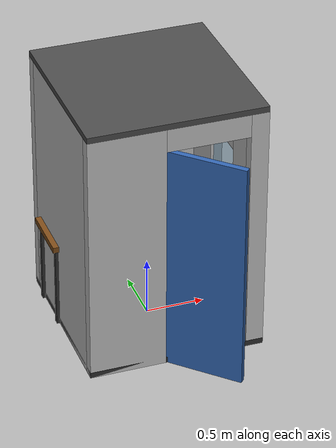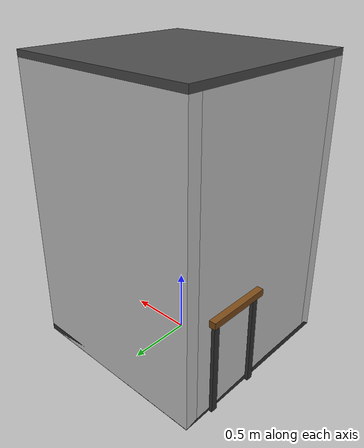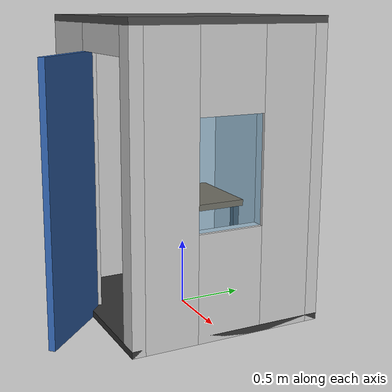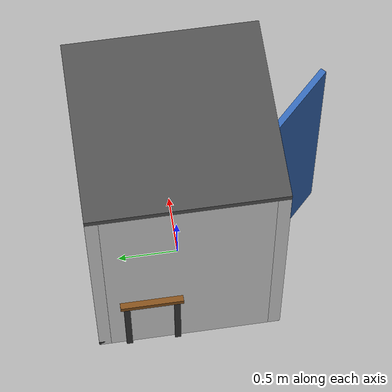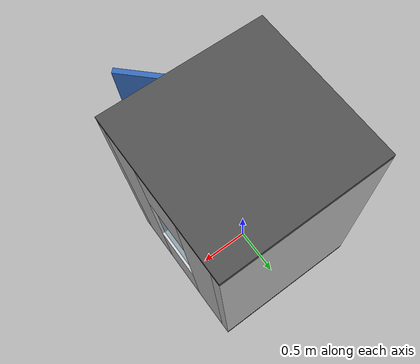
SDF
<?xml version="1.0" ?>
<sdf version="1.6">
  <model name="sgabuzzino">
    <static>true</static>

    <link name="pavimento">
      <pose>0 0 0.025 0 0 0</pose>
      <collision name="collision"><geometry><box><size>1.5 1.5 0.05</size></box></geometry></collision>
      <visual name="visual">
        <geometry><box><size>1.5 1.5 0.05</size></box></geometry>
        <material><ambient>0.2 0.2 0.2 1</ambient><diffuse>0.2 0.2 0.2 1</diffuse></material>
      </visual>
    </link>

    <link name="tetto">
      <pose>0 0 2.225 0 0 0</pose>
      <collision name="collision"><geometry><box><size>1.5 1.5 0.05</size></box></geometry></collision>
      <visual name="visual">
        <geometry><box><size>1.5 1.5 0.05</size></box></geometry>
        <material><ambient>0.3 0.3 0.3 1</ambient><diffuse>0.3 0.3 0.3 1</diffuse></material>
      </visual>
    </link>

    <link name="muro_dietro">
      <pose>0 0.7 1.1 0 0 0</pose>
      <collision name="collision"><geometry><box><size>1.5 0.1 2.2</size></box></geometry></collision>
      <visual name="visual">
        <geometry><box><size>1.5 0.1 2.2</size></box></geometry>
        <material><ambient>0.8 0.8 0.8 1</ambient><diffuse>0.8 0.8 0.8 1</diffuse></material>
      </visual>
    </link>

    <link name="muro_sx">
      <pose>-0.7 0 1.1 0 0 0</pose>
      <collision name="collision"><geometry><box><size>0.1 1.3 2.2</size></box></geometry></collision>
      <visual name="visual">
        <geometry><box><size>0.1 1.3 2.2</size></box></geometry>
        <material><ambient>0.8 0.8 0.8 1</ambient><diffuse>0.8 0.8 0.8 1</diffuse></material>
      </visual>
    </link>

    <link name="muro_dx_pilastro_1">
      <pose>0.7 -0.45 1.1 0 0 0</pose>
      <visual name="visual"><geometry><box><size>0.1 0.4 2.2</size></box></geometry><material><ambient>0.8 0.8 0.8 1</ambient><diffuse>0.8 0.8 0.8 1</diffuse></material></visual>
      <collision name="collision"><geometry><box><size>0.1 0.4 2.2</size></box></geometry></collision>
    </link>
    <link name="muro_dx_pilastro_2">
      <pose>0.7 0.45 1.1 0 0 0</pose>
      <visual name="visual"><geometry><box><size>0.1 0.4 2.2</size></box></geometry><material><ambient>0.8 0.8 0.8 1</ambient><diffuse>0.8 0.8 0.8 1</diffuse></material></visual>
      <collision name="collision"><geometry><box><size>0.1 0.4 2.2</size></box></geometry></collision>
    </link>
    <link name="muro_dx_sotto_finestra">
      <pose>0.7 0 0.4 0 0 0</pose>
      <visual name="visual"><geometry><box><size>0.1 0.5 0.8</size></box></geometry><material><ambient>0.8 0.8 0.8 1</ambient><diffuse>0.8 0.8 0.8 1</diffuse></material></visual>
      <collision name="collision"><geometry><box><size>0.1 0.5 0.8</size></box></geometry></collision>
    </link>
    <link name="muro_dx_sopra_finestra">
      <pose>0.7 0 1.9 0 0 0</pose>
      <visual name="visual"><geometry><box><size>0.1 0.5 0.6</size></box></geometry><material><ambient>0.8 0.8 0.8 1</ambient><diffuse>0.8 0.8 0.8 1</diffuse></material></visual>
      <collision name="collision"><geometry><box><size>0.1 0.5 0.6</size></box></geometry></collision>
    </link>

    <link name="vetro_finestra">
      <pose>0.7 0 1.2 0 0 0</pose>
      <visual name="visual">
        <geometry><box><size>0.05 0.5 0.8</size></box></geometry>
        <material>
          <ambient>0.4 0.7 0.9 0.4</ambient>
          <diffuse>0.4 0.7 0.9 0.4</diffuse>
        </material>
        <transparency>0.6</transparency>
      </visual>
      <collision name="collision"><geometry><box><size>0.05 0.5 0.8</size></box></geometry></collision>
    </link>

    <link name="muro_frontale_sx">
      <pose>-0.425 -0.7 1.1 0 0 0</pose>
      <visual name="visual"><geometry><box><size>0.65 0.1 2.2</size></box></geometry><material><ambient>0.8 0.8 0.8 1</ambient><diffuse>0.8 0.8 0.8 1</diffuse></material></visual>
      <collision name="collision"><geometry><box><size>0.65 0.1 2.2</size></box></geometry></collision>
    </link>
    <link name="muro_frontale_dx">
      <pose>0.675 -0.7 1.1 0 0 0</pose>
      <visual name="visual"><geometry><box><size>0.15 0.1 2.2</size></box></geometry><material><ambient>0.8 0.8 0.8 1</ambient><diffuse>0.8 0.8 0.8 1</diffuse></material></visual>
      <collision name="collision"><geometry><box><size>0.15 0.1 2.2</size></box></geometry></collision>
    </link>
    <link name="cornice_porta">
      <pose>0.25 -0.7 2.1 0 0 0</pose>
      <visual name="visual"><geometry><box><size>0.7 0.1 0.2</size></box></geometry><material><ambient>0.8 0.8 0.8 1</ambient><diffuse>0.8 0.8 0.8 1</diffuse></material></visual>
      <collision name="collision"><geometry><box><size>0.7 0.1 0.2</size></box></geometry></collision>
    </link>

    <link name="porta">
      <pose>0.15 -0.95 1.0 0 0 -0.785</pose>
      <visual name="visual">
        <geometry><box><size>0.7 0.05 2.0</size></box></geometry>
        <material><ambient>0.2 0.4 0.7 1</ambient><diffuse>0.2 0.4 0.7 1</diffuse></material>
      </visual>
      <collision name="collision"><geometry><box><size>0.7 0.05 2.0</size></box></geometry></collision>
    </link>

    <link name="scrivania_top">
      <pose>-0.4 0.3 0.75 0 0 0</pose>
      <visual name="visual"><geometry><box><size>0.8 0.5 0.05</size></box></geometry><material><ambient>0.5 0.3 0.1 1</ambient><diffuse>0.5 0.3 0.1 1</diffuse></material></visual>
      <collision name="collision"><geometry><box><size>0.8 0.5 0.05</size></box></geometry></collision>
    </link>
    <link name="scrivania_gamba1">
      <pose>-0.75 0.5 0.375 0 0 0</pose>
      <visual name="visual"><geometry><box><size>0.05 0.05 0.75</size></box></geometry><material><ambient>0.2 0.2 0.2 1</ambient><diffuse>0.2 0.2 0.2 1</diffuse></material></visual>
    </link>
    <link name="scrivania_gamba2">
      <pose>-0.05 0.5 0.375 0 0 0</pose>
      <visual name="visual"><geometry><box><size>0.05 0.05 0.75</size></box></geometry><material><ambient>0.2 0.2 0.2 1</ambient><diffuse>0.2 0.2 0.2 1</diffuse></material></visual>
    </link>
    <link name="scrivania_gamba3">
      <pose>-0.75 0.1 0.375 0 0 0</pose>
      <visual name="visual"><geometry><box><size>0.05 0.05 0.75</size></box></geometry><material><ambient>0.2 0.2 0.2 1</ambient><diffuse>0.2 0.2 0.2 1</diffuse></material></visual>
    </link>
    <link name="scrivania_gamba4">
      <pose>-0.05 0.1 0.375 0 0 0</pose>
      <visual name="visual"><geometry><box><size>0.05 0.05 0.75</size></box></geometry><material><ambient>0.2 0.2 0.2 1</ambient><diffuse>0.2 0.2 0.2 1</diffuse></material></visual>
    </link>

  </model>
</sdf>
